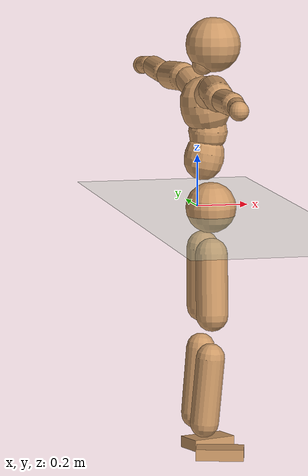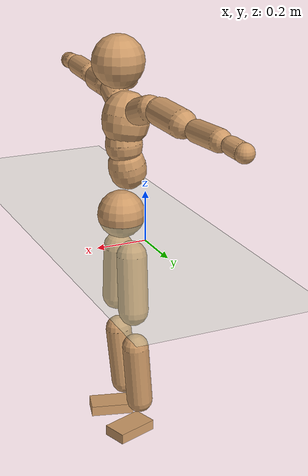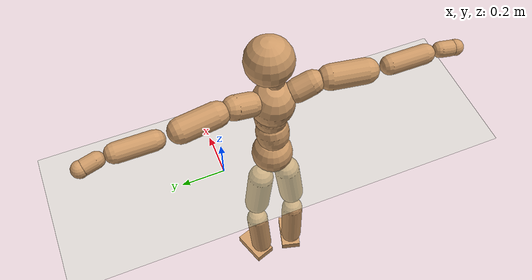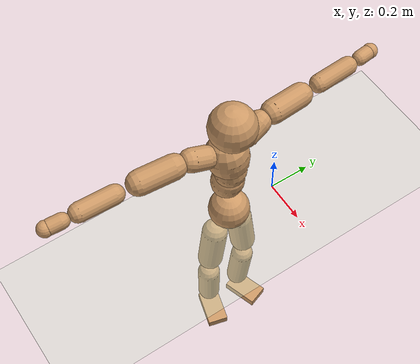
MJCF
<mujoco model="humanoid">
  <compiler coordinate="local"/>
  <default>
    <joint damping="0.0" armature="0.01" stiffness="0.0" limited="true"/>
    <geom conaffinity="1" condim="3" contype="7" margin="0.001" rgba="0.8 0.6 .4 1"/>
  </default>
  <asset>
    <texture type="skybox" builtin="gradient" rgb1=".4 .5 .6" rgb2="0 0 0" width="100" height="100"/>
    <texture builtin="flat" height="1278" mark="cross" markrgb="1 1 1" name="texgeom" random="0.01" rgb1="0.8 0.6 0.4" rgb2="0.8 0.6 0.4" type="cube" width="127"/>
    <texture builtin="checker" height="100" name="texplane" rgb1="0 0 0" rgb2="0.8 0.8 0.8" type="2d" width="100"/>
    <material name="MatPlane" reflectance="0.5" shininess="1" specular="1" texrepeat="60 60" texture="texplane"/>
    <material name="geom" texture="texgeom" texuniform="true"/>
  </asset>
  <worldbody>
    <light cutoff="100" diffuse="1 1 1" dir="-0 0 -1.3" directional="true" exponent="1" pos="0 0 1.3" specular=".1 .1 .1"/>
    <geom conaffinity="1" condim="3" name="floor" pos="0 0 0" rgba="0.8 0.9 0.8 1" size="100 100 .2" type="plane" material="MatPlane"/>
    <body name="Pelvis" pos="-0.0021 -0.2414 0.0288">
      <freejoint name="Pelvis"/>
      <geom type="sphere" contype="1" conaffinity="1" density="500" size="0.0972" pos="0.0000 0.0000 0.0000" name="Pelvis"/>
      <body name="L_Hip" pos="-0.0174 0.0586 -0.0827">
        <joint name="L_Hip_x" type="hinge" pos="0 0 0" axis="1 0 0" stiffness="800" damping="80" armature="0.02" range="-180.0000 180.0000"/>
        <joint name="L_Hip_y" type="hinge" pos="0 0 0" axis="0 1 0" stiffness="800" damping="80" armature="0.02" range="-180.0000 180.0000"/>
        <joint name="L_Hip_z" type="hinge" pos="0 0 0" axis="0 0 1" stiffness="800" damping="80" armature="0.02" range="-180.0000 180.0000"/>
        <geom type="capsule" contype="1" conaffinity="1" density="500" fromto="0.0016 0.0087 -0.0780 0.0063 0.0350 -0.3120" size="0.0619" name="L_Hip"/>
        <body name="L_Knee" pos="0.0078 0.0437 -0.39">
          <joint name="L_Knee_x" type="hinge" pos="0 0 0" axis="1 0 0" stiffness="800" damping="80" armature="0.02" range="-180.0000 180.0000"/>
          <joint name="L_Knee_y" type="hinge" pos="0 0 0" axis="0 1 0" stiffness="800" damping="80" armature="0.02" range="-180.0000 180.0000"/>
          <joint name="L_Knee_z" type="hinge" pos="0 0 0" axis="0 0 1" stiffness="800" damping="80" armature="0.02" range="-180.0000 180.0000"/>
          <geom type="capsule" contype="1" conaffinity="1" density="500" fromto="-0.0075 -0.0030 -0.0863 -0.0302 -0.0119 -0.3451" size="0.0552" name="L_Knee"/>
          <body name="L_Ankle" pos="-0.0377 -0.0149 -0.4313">
            <joint name="L_Ankle_x" type="hinge" pos="0 0 0" axis="1 0 0" stiffness="800" damping="80" armature="0.02" range="-180.0000 180.0000"/>
            <joint name="L_Ankle_y" type="hinge" pos="0 0 0" axis="0 1 0" stiffness="800" damping="80" armature="0.02" range="-180.0000 180.0000"/>
            <joint name="L_Ankle_z" type="hinge" pos="0 0 0" axis="0 0 1" stiffness="800" damping="80" armature="0.02" range="-180.0000 180.0000"/>
            <geom type="box" contype="1" conaffinity="1" density="500" pos="0.0612 0.0207 -0.0304" size="0.0888 0.0522 0.0219" quat="0.9868 0.0000 0.0000 0.1621" name="L_Ankle"/>
            <body name="L_Toe" pos="0.1225 0.0414 -0.0607">
              <joint name="L_Toe_x" type="hinge" pos="0 0 0" axis="1 0 0" stiffness="500" damping="50" armature="0.02" range="-180.0000 180.0000"/>
              <joint name="L_Toe_y" type="hinge" pos="0 0 0" axis="0 1 0" stiffness="500" damping="50" armature="0.02" range="-180.0000 180.0000"/>
              <joint name="L_Toe_z" type="hinge" pos="0 0 0" axis="0 0 1" stiffness="500" damping="50" armature="0.02" range="-180.0000 180.0000"/>
              <geom type="box" contype="1" conaffinity="1" density="500" pos="0.0000 0.0000 0.0297" size="0.0011 0.0025 0.0011" quat="0.9860 0.0000 0.0000 0.1668" name="L_Toe"/>
            </body>
          </body>
        </body>
      </body>
      <body name="R_Hip" pos="-0.0131 -0.0603 -0.0911">
        <joint name="R_Hip_x" type="hinge" pos="0 0 0" axis="1 0 0" stiffness="800" damping="80" armature="0.02" range="-180.0000 180.0000"/>
        <joint name="R_Hip_y" type="hinge" pos="0 0 0" axis="0 1 0" stiffness="800" damping="80" armature="0.02" range="-180.0000 180.0000"/>
        <joint name="R_Hip_z" type="hinge" pos="0 0 0" axis="0 0 1" stiffness="800" damping="80" armature="0.02" range="-180.0000 180.0000"/>
        <geom type="capsule" contype="1" conaffinity="1" density="500" fromto="-0.0010 -0.0088 -0.0775 -0.0041 -0.0351 -0.3100" size="0.0614" name="R_Hip"/>
        <body name="R_Knee" pos="-0.0051 -0.0438 -0.3875">
          <joint name="R_Knee_x" type="hinge" pos="0 0 0" axis="1 0 0" stiffness="800" damping="80" armature="0.02" range="-180.0000 180.0000"/>
          <joint name="R_Knee_y" type="hinge" pos="0 0 0" axis="0 1 0" stiffness="800" damping="80" armature="0.02" range="-180.0000 180.0000"/>
          <joint name="R_Knee_z" type="hinge" pos="0 0 0" axis="0 0 1" stiffness="800" damping="80" armature="0.02" range="-180.0000 180.0000"/>
          <geom type="capsule" contype="1" conaffinity="1" density="500" fromto="-0.0069 0.0038 -0.0850 -0.0278 0.0154 -0.3398" size="0.0554" name="R_Knee"/>
          <body name="R_Ankle" pos="-0.0347 0.0192 -0.4248">
            <joint name="R_Ankle_x" type="hinge" pos="0 0 0" axis="1 0 0" stiffness="800" damping="80" armature="0.02" range="-180.0000 180.0000"/>
            <joint name="R_Ankle_y" type="hinge" pos="0 0 0" axis="0 1 0" stiffness="800" damping="80" armature="0.02" range="-180.0000 180.0000"/>
            <joint name="R_Ankle_z" type="hinge" pos="0 0 0" axis="0 0 1" stiffness="800" damping="80" armature="0.02" range="-180.0000 180.0000"/>
            <geom type="box" contype="1" conaffinity="1" density="500" pos="0.0653 -0.0175 -0.0314" size="0.0911 0.0511 0.0222" quat="0.9914 0.0000 0.0000 -0.1307" name="R_Ankle"/>
            <body name="R_Toe" pos="0.1307 -0.0351 -0.0628">
              <joint name="R_Toe_x" type="hinge" pos="0 0 0" axis="1 0 0" stiffness="500" damping="50" armature="0.02" range="-180.0000 180.0000"/>
              <joint name="R_Toe_y" type="hinge" pos="0 0 0" axis="0 1 0" stiffness="500" damping="50" armature="0.02" range="-180.0000 180.0000"/>
              <joint name="R_Toe_z" type="hinge" pos="0 0 0" axis="0 0 1" stiffness="500" damping="50" armature="0.02" range="-180.0000 180.0000"/>
              <geom type="box" contype="1" conaffinity="1" density="500" pos="0.0000 0.0000 0.0313" size="0.0011 0.0025 0.0011" quat="0.9926 0.0000 0.0000 -0.1218" name="R_Toe"/>
            </body>
          </body>
        </body>
      </body>
      <body name="Torso" pos="-0.0385 0.0045 0.1254">
        <joint name="Torso_x" type="hinge" pos="0 0 0" axis="1 0 0" stiffness="1000" damping="100" armature="0.02" range="-180.0000 180.0000"/>
        <joint name="Torso_y" type="hinge" pos="0 0 0" axis="0 1 0" stiffness="1000" damping="100" armature="0.02" range="-180.0000 180.0000"/>
        <joint name="Torso_z" type="hinge" pos="0 0 0" axis="0 0 1" stiffness="1000" damping="100" armature="0.02" range="-180.0000 180.0000"/>
        <geom type="capsule" contype="1" conaffinity="1" density="500" fromto="0.0162 0.0027 0.0830 0.0108 0.0018 0.0554" size="0.075516" name="Torso"/>
        <body name="Spine" pos="0.027 0.0045 0.1384">
          <joint name="Spine_x" type="hinge" pos="0 0 0" axis="1 0 0" stiffness="1000" damping="100" armature="0.02" range="-180.0000 180.0000"/>
          <joint name="Spine_y" type="hinge" pos="0 0 0" axis="0 1 0" stiffness="1000" damping="100" armature="0.02" range="-180.0000 180.0000"/>
          <joint name="Spine_z" type="hinge" pos="0 0 0" axis="0 0 1" stiffness="1000" damping="100" armature="0.02" range="-180.0000 180.0000"/>
          <geom type="capsule" contype="1" conaffinity="1" density="500" fromto="0.0016 -0.0014 0.0337 0.0011 -0.0009 0.0224" size="0.074586" name="Spine"/>
          <body name="Chest" pos="0.0027 -0.0024 0.0561">
            <joint name="Chest_x" type="hinge" pos="0 0 0" axis="1 0 0" stiffness="1000" damping="100" armature="0.02" range="-180.0000 180.0000"/>
            <joint name="Chest_y" type="hinge" pos="0 0 0" axis="0 1 0" stiffness="1000" damping="100" armature="0.02" range="-180.0000 180.0000"/>
            <joint name="Chest_z" type="hinge" pos="0 0 0" axis="0 0 1" stiffness="1000" damping="100" armature="0.02" range="-180.0000 180.0000"/>
            <geom type="capsule" contype="1" conaffinity="1" density="500" fromto="-0.0154 -0.0050 0.0881 -0.0103 -0.0033 0.0587" size="0.095511" name="Chest"/>
            <body name="Neck" pos="-0.0335 -0.0135 0.2127">
              <joint name="Neck_x" type="hinge" pos="0 0 0" axis="1 0 0" stiffness="500" damping="50" armature="0.02" range="-180.0000 180.0000"/>
              <joint name="Neck_y" type="hinge" pos="0 0 0" axis="0 1 0" stiffness="500" damping="50" armature="0.02" range="-180.0000 180.0000"/>
              <joint name="Neck_z" type="hinge" pos="0 0 0" axis="0 0 1" stiffness="500" damping="50" armature="0.02" range="-180.0000 180.0000"/>
              <geom type="capsule" contype="1" conaffinity="1" density="500" fromto="0.0102 0.0020 0.0179 0.0410 0.0080 0.0715" size="0.042501" name="Neck"/>
              <body name="Head" pos="0.0512 0.0101 0.0894">
                <joint name="Head_x" type="hinge" pos="0 0 0" axis="1 0 0" stiffness="500" damping="50" armature="0.02" range="-180.0000 180.0000"/>
                <joint name="Head_y" type="hinge" pos="0 0 0" axis="0 1 0" stiffness="500" damping="50" armature="0.02" range="-180.0000 180.0000"/>
                <joint name="Head_z" type="hinge" pos="0 0 0" axis="0 0 1" stiffness="500" damping="50" armature="0.02" range="-180.0000 180.0000"/>
                <geom type="sphere" contype="1" conaffinity="1" density="500" size="0.1051" pos="0.0000 0.0000 0.0000" name="Head"/>
              </body>
            </body>
            <body name="L_Thorax" pos="-0.0194 0.0719 0.1145">
              <joint name="L_Thorax_x" type="hinge" pos="0 0 0" axis="1 0 0" stiffness="500" damping="50" armature="0.02" range="-180.0000 180.0000"/>
              <joint name="L_Thorax_y" type="hinge" pos="0 0 0" axis="0 1 0" stiffness="500" damping="50" armature="0.02" range="-180.0000 180.0000"/>
              <joint name="L_Thorax_z" type="hinge" pos="0 0 0" axis="0 0 1" stiffness="500" damping="50" armature="0.02" range="-180.0000 180.0000"/>
              <geom type="capsule" contype="1" conaffinity="1" density="500" fromto="-0.0039 0.0246 0.0090 -0.0155 0.0982 0.0361" size="0.0532" name="L_Thorax"/>
              <body name="L_Shoulder" pos="-0.0193 0.1228 0.0451">
                <joint name="L_Shoulder_x" type="hinge" pos="0 0 0" axis="1 0 0" stiffness="500" damping="50" armature="0.02" range="-720.0000 720.0000"/>
                <joint name="L_Shoulder_y" type="hinge" pos="0 0 0" axis="0 1 0" stiffness="500" damping="50" armature="0.02" range="-720.0000 720.0000"/>
                <joint name="L_Shoulder_z" type="hinge" pos="0 0 0" axis="0 0 1" stiffness="500" damping="50" armature="0.02" range="-720.0000 720.0000"/>
                <geom type="capsule" contype="1" conaffinity="1" density="500" fromto="-0.0046 0.0515 -0.0031 -0.0184 0.2058 -0.0126" size="0.0553" name="L_Shoulder"/>
                <body name="L_Elbow" pos="-0.023 0.2573 -0.0157">
                  <joint name="L_Elbow_x" type="hinge" pos="0 0 0" axis="1 0 0" stiffness="500" damping="50" armature="0.02" range="-720.0000 720.0000"/>
                  <joint name="L_Elbow_y" type="hinge" pos="0 0 0" axis="0 1 0" stiffness="500" damping="50" armature="0.02" range="-720.0000 720.0000"/>
                  <joint name="L_Elbow_z" type="hinge" pos="0 0 0" axis="0 0 1" stiffness="500" damping="50" armature="0.02" range="-720.0000 720.0000"/>
                  <geom type="capsule" contype="1" conaffinity="1" density="500" fromto="-0.0015 0.0533 0.0025 -0.0061 0.2133 0.0101" size="0.0427" name="L_Elbow"/>
                  <body name="L_Wrist" pos="-0.0076 0.2667 0.0127">
                    <joint name="L_Wrist_x" type="hinge" pos="0 0 0" axis="1 0 0" stiffness="300" damping="30" armature="0.02" range="-180.0000 180.0000"/>
                    <joint name="L_Wrist_y" type="hinge" pos="0 0 0" axis="0 1 0" stiffness="300" damping="30" armature="0.02" range="-180.0000 180.0000"/>
                    <joint name="L_Wrist_z" type="hinge" pos="0 0 0" axis="0 0 1" stiffness="300" damping="30" armature="0.02" range="-180.0000 180.0000"/>
                    <geom type="capsule" contype="1" conaffinity="1" density="500" fromto="-0.0031 0.0173 -0.0021 -0.0125 0.0692 -0.0085" size="0.0341" name="L_Wrist"/>
                    <body name="L_Hand" pos="-0.0156 0.0866 -0.0106">
                      <joint name="L_Hand_x" type="hinge" pos="0 0 0" axis="1 0 0" stiffness="300" damping="30" armature="0.02" range="-180.0000 180.0000"/>
                      <joint name="L_Hand_y" type="hinge" pos="0 0 0" axis="0 1 0" stiffness="300" damping="30" armature="0.02" range="-180.0000 180.0000"/>
                      <joint name="L_Hand_z" type="hinge" pos="0 0 0" axis="0 0 1" stiffness="300" damping="30" armature="0.02" range="-180.0000 180.0000"/>
                      <geom type="sphere" contype="1" conaffinity="1" density="500" size="0.0356" pos="0.0000 0.0000 0.0000" name="L_Hand"/>
                    </body>
                  </body>
                </body>
              </body>
            </body>
            <body name="R_Thorax" pos="-0.024 -0.0832 0.1131">
              <joint name="R_Thorax_x" type="hinge" pos="0 0 0" axis="1 0 0" stiffness="500" damping="50" armature="0.02" range="-180.0000 180.0000"/>
              <joint name="R_Thorax_y" type="hinge" pos="0 0 0" axis="0 1 0" stiffness="500" damping="50" armature="0.02" range="-180.0000 180.0000"/>
              <joint name="R_Thorax_z" type="hinge" pos="0 0 0" axis="0 0 1" stiffness="500" damping="50" armature="0.02" range="-180.0000 180.0000"/>
              <geom type="capsule" contype="1" conaffinity="1" density="500" fromto="-0.0017 -0.0226 0.0093 -0.0069 -0.0905 0.0374" size="0.0532" name="R_Thorax"/>
              <body name="R_Shoulder" pos="-0.0086 -0.1131 0.0467">
                <joint name="R_Shoulder_x" type="hinge" pos="0 0 0" axis="1 0 0" stiffness="500" damping="50" armature="0.02" range="-720.0000 720.0000"/>
                <joint name="R_Shoulder_y" type="hinge" pos="0 0 0" axis="0 1 0" stiffness="500" damping="50" armature="0.02" range="-720.0000 720.0000"/>
                <joint name="R_Shoulder_z" type="hinge" pos="0 0 0" axis="0 0 1" stiffness="500" damping="50" armature="0.02" range="-720.0000 720.0000"/>
                <geom type="capsule" contype="1" conaffinity="1" density="500" fromto="-0.0062 -0.0524 -0.0029 -0.0249 -0.2094 -0.0115" size="0.0561" name="R_Shoulder"/>
                <body name="R_Elbow" pos="-0.0312 -0.2618 -0.0143">
                  <joint name="R_Elbow_x" type="hinge" pos="0 0 0" axis="1 0 0" stiffness="500" damping="50" armature="0.02" range="-720.0000 720.0000"/>
                  <joint name="R_Elbow_y" type="hinge" pos="0 0 0" axis="0 1 0" stiffness="500" damping="50" armature="0.02" range="-720.0000 720.0000"/>
                  <joint name="R_Elbow_z" type="hinge" pos="0 0 0" axis="0 0 1" stiffness="500" damping="50" armature="0.02" range="-720.0000 720.0000"/>
                  <geom type="capsule" contype="1" conaffinity="1" density="500" fromto="-0.0013 -0.0541 0.0014 -0.0051 -0.2163 0.0057" size="0.0434" name="R_Elbow"/>
                  <body name="R_Wrist" pos="-0.0064 -0.2703 0.0071">
                    <joint name="R_Wrist_x" type="hinge" pos="0 0 0" axis="1 0 0" stiffness="300" damping="30" armature="0.02" range="-180.0000 180.0000"/>
                    <joint name="R_Wrist_y" type="hinge" pos="0 0 0" axis="0 1 0" stiffness="300" damping="30" armature="0.02" range="-180.0000 180.0000"/>
                    <joint name="R_Wrist_z" type="hinge" pos="0 0 0" axis="0 0 1" stiffness="300" damping="30" armature="0.02" range="-180.0000 180.0000"/>
                    <geom type="capsule" contype="1" conaffinity="1" density="500" fromto="-0.0020 -0.0177 -0.0017 -0.0081 -0.0709 -0.0069" size="0.0348" name="R_Wrist"/>
                    <body name="R_Hand" pos="-0.0101 -0.0887 -0.0086">
                      <joint name="R_Hand_x" type="hinge" pos="0 0 0" axis="1 0 0" stiffness="300" damping="30" armature="0.02" range="-180.0000 180.0000"/>
                      <joint name="R_Hand_y" type="hinge" pos="0 0 0" axis="0 1 0" stiffness="300" damping="30" armature="0.02" range="-180.0000 180.0000"/>
                      <joint name="R_Hand_z" type="hinge" pos="0 0 0" axis="0 0 1" stiffness="300" damping="30" armature="0.02" range="-180.0000 180.0000"/>
                      <geom type="sphere" contype="1" conaffinity="1" density="500" size="0.0361" pos="0.0000 0.0000 0.0000" name="R_Hand"/>
                    </body>
                  </body>
                </body>
              </body>
            </body>
          </body>
        </body>
      </body>
    </body>
  </worldbody>
  <actuator>
    <motor name="L_Hip_x" joint="L_Hip_x" gear="500"/>
    <motor name="L_Hip_y" joint="L_Hip_y" gear="500"/>
    <motor name="L_Hip_z" joint="L_Hip_z" gear="500"/>
    <motor name="L_Knee_x" joint="L_Knee_x" gear="500"/>
    <motor name="L_Knee_y" joint="L_Knee_y" gear="500"/>
    <motor name="L_Knee_z" joint="L_Knee_z" gear="500"/>
    <motor name="L_Ankle_x" joint="L_Ankle_x" gear="500"/>
    <motor name="L_Ankle_y" joint="L_Ankle_y" gear="500"/>
    <motor name="L_Ankle_z" joint="L_Ankle_z" gear="500"/>
    <motor name="L_Toe_x" joint="L_Toe_x" gear="500"/>
    <motor name="L_Toe_y" joint="L_Toe_y" gear="500"/>
    <motor name="L_Toe_z" joint="L_Toe_z" gear="500"/>
    <motor name="R_Hip_x" joint="R_Hip_x" gear="500"/>
    <motor name="R_Hip_y" joint="R_Hip_y" gear="500"/>
    <motor name="R_Hip_z" joint="R_Hip_z" gear="500"/>
    <motor name="R_Knee_x" joint="R_Knee_x" gear="500"/>
    <motor name="R_Knee_y" joint="R_Knee_y" gear="500"/>
    <motor name="R_Knee_z" joint="R_Knee_z" gear="500"/>
    <motor name="R_Ankle_x" joint="R_Ankle_x" gear="500"/>
    <motor name="R_Ankle_y" joint="R_Ankle_y" gear="500"/>
    <motor name="R_Ankle_z" joint="R_Ankle_z" gear="500"/>
    <motor name="R_Toe_x" joint="R_Toe_x" gear="500"/>
    <motor name="R_Toe_y" joint="R_Toe_y" gear="500"/>
    <motor name="R_Toe_z" joint="R_Toe_z" gear="500"/>
    <motor name="Torso_x" joint="Torso_x" gear="500"/>
    <motor name="Torso_y" joint="Torso_y" gear="500"/>
    <motor name="Torso_z" joint="Torso_z" gear="500"/>
    <motor name="Spine_x" joint="Spine_x" gear="500"/>
    <motor name="Spine_y" joint="Spine_y" gear="500"/>
    <motor name="Spine_z" joint="Spine_z" gear="500"/>
    <motor name="Chest_x" joint="Chest_x" gear="500"/>
    <motor name="Chest_y" joint="Chest_y" gear="500"/>
    <motor name="Chest_z" joint="Chest_z" gear="500"/>
    <motor name="Neck_x" joint="Neck_x" gear="500"/>
    <motor name="Neck_y" joint="Neck_y" gear="500"/>
    <motor name="Neck_z" joint="Neck_z" gear="500"/>
    <motor name="Head_x" joint="Head_x" gear="500"/>
    <motor name="Head_y" joint="Head_y" gear="500"/>
    <motor name="Head_z" joint="Head_z" gear="500"/>
    <motor name="L_Thorax_x" joint="L_Thorax_x" gear="500"/>
    <motor name="L_Thorax_y" joint="L_Thorax_y" gear="500"/>
    <motor name="L_Thorax_z" joint="L_Thorax_z" gear="500"/>
    <motor name="L_Shoulder_x" joint="L_Shoulder_x" gear="500"/>
    <motor name="L_Shoulder_y" joint="L_Shoulder_y" gear="500"/>
    <motor name="L_Shoulder_z" joint="L_Shoulder_z" gear="500"/>
    <motor name="L_Elbow_x" joint="L_Elbow_x" gear="500"/>
    <motor name="L_Elbow_y" joint="L_Elbow_y" gear="500"/>
    <motor name="L_Elbow_z" joint="L_Elbow_z" gear="500"/>
    <motor name="L_Wrist_x" joint="L_Wrist_x" gear="500"/>
    <motor name="L_Wrist_y" joint="L_Wrist_y" gear="500"/>
    <motor name="L_Wrist_z" joint="L_Wrist_z" gear="500"/>
    <motor name="L_Hand_x" joint="L_Hand_x" gear="500"/>
    <motor name="L_Hand_y" joint="L_Hand_y" gear="500"/>
    <motor name="L_Hand_z" joint="L_Hand_z" gear="500"/>
    <motor name="R_Thorax_x" joint="R_Thorax_x" gear="500"/>
    <motor name="R_Thorax_y" joint="R_Thorax_y" gear="500"/>
    <motor name="R_Thorax_z" joint="R_Thorax_z" gear="500"/>
    <motor name="R_Shoulder_x" joint="R_Shoulder_x" gear="500"/>
    <motor name="R_Shoulder_y" joint="R_Shoulder_y" gear="500"/>
    <motor name="R_Shoulder_z" joint="R_Shoulder_z" gear="500"/>
    <motor name="R_Elbow_x" joint="R_Elbow_x" gear="500"/>
    <motor name="R_Elbow_y" joint="R_Elbow_y" gear="500"/>
    <motor name="R_Elbow_z" joint="R_Elbow_z" gear="500"/>
    <motor name="R_Wrist_x" joint="R_Wrist_x" gear="500"/>
    <motor name="R_Wrist_y" joint="R_Wrist_y" gear="500"/>
    <motor name="R_Wrist_z" joint="R_Wrist_z" gear="500"/>
    <motor name="R_Hand_x" joint="R_Hand_x" gear="500"/>
    <motor name="R_Hand_y" joint="R_Hand_y" gear="500"/>
    <motor name="R_Hand_z" joint="R_Hand_z" gear="500"/>
  </actuator>
  <contact>
    <exclude body1="Torso" body2="Chest"/>
    <exclude body1="Head" body2="Chest"/>
    <exclude body1="R_Knee" body2="R_Toe"/>
    <exclude body1="R_Knee" body2="L_Ankle"/>
    <exclude body1="R_Knee" body2="L_Toe"/>
    <exclude body1="L_Knee" body2="L_Toe"/>
    <exclude body1="L_Knee" body2="R_Ankle"/>
    <exclude body1="L_Knee" body2="R_Toe"/>
    <exclude body1="L_Shoulder" body2="Chest"/>
    <exclude body1="R_Shoulder" body2="Chest"/>
  </contact>
  <sensor/>
  <size njmax="700" nconmax="700"/>
</mujoco>
